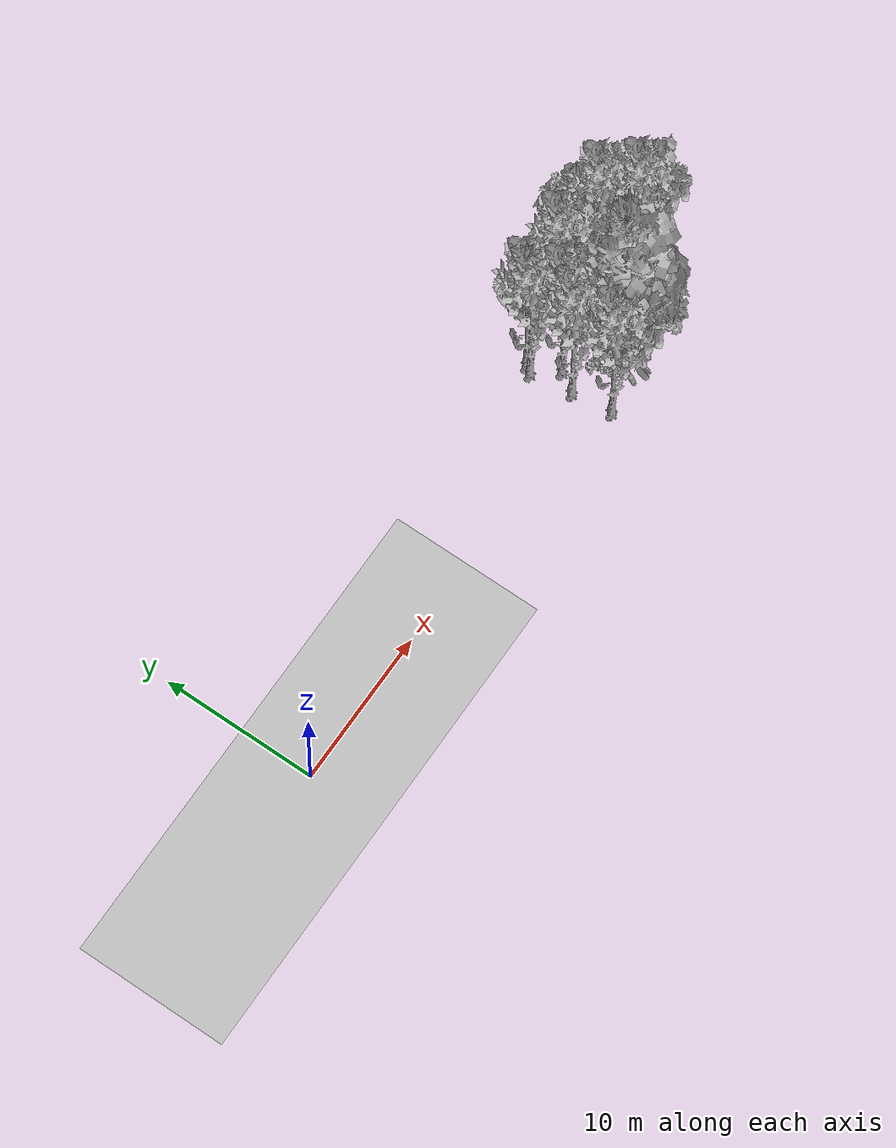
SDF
<sdf version="1.7">
 <world name="default">
  <model name="ground_plane">
   <static>1</static>
   <link name="link">
    <collision name="collision">
     <geometry><plane><normal>0 0 1</normal><size>100 100</size></plane></geometry>
     <surface><contact><ode><min_depth>0.01</min_depth><max_vel>0</max_vel></ode></contact></surface>
    </collision>
    <visual name="grass">
     <cast_shadows>0</cast_shadows>
     <geometry>
      <mesh>
       <scale>0.5814285714285714 0.18142857142857144 0.1</scale>
       <uri>file://grass_plane/meshes/grass_plane.dae</uri>
      </mesh>
     </geometry>
    </visual>
   </link>
  </model>
  <model name="Tree 74">
   <static>1</static>
   <pose>35.125090444855275 3.9969409657972506 0 1.57079 -0 0</pose>
   <link name="link">
    <collision name="collision">
     <geometry><mesh><scale>3.5 5 3.5</scale><uri>model://tree_9/meshes/tree_9.obj</uri></mesh></geometry>
    </collision>
    <visual name="visual">
     <geometry><mesh><scale>3.5 5 3.5</scale><uri>model://tree_9/meshes/tree_9.obj</uri></mesh></geometry>
    </visual>
   </link>
  </model>
  <model name="Tree 87">
   <static>1</static>
   <pose>27.876167761664064 4.166294440727153 0 1.57079 -0 0</pose>
   <link name="link">
    <collision name="collision">
     <geometry><mesh><scale>3.5 5 3.5</scale><uri>model://tree_9/meshes/tree_9.obj</uri></mesh></geometry>
    </collision>
    <visual name="visual">
     <geometry><mesh><scale>3.5 5 3.5</scale><uri>model://tree_9/meshes/tree_9.obj</uri></mesh></geometry>
    </visual>
   </link>
  </model>
  <model name="Tree 112">
   <static>1</static>
   <pose>27.541952539745935 3.7006533865984466 0 1.57079 -0 0</pose>
   <link name="link">
    <collision name="collision">
     <geometry><mesh><scale>3.5 5 3.5</scale><uri>model://tree_9/meshes/tree_9.obj</uri></mesh></geometry>
    </collision>
    <visual name="visual">
     <geometry><mesh><scale>3.5 5 3.5</scale><uri>model://tree_9/meshes/tree_9.obj</uri></mesh></geometry>
    </visual>
   </link>
  </model>
  <model name="Tree 163">
   <static>1</static>
   <pose>31.589402543555067 -0.5273716036500424 0 1.57079 -0 0</pose>
   <link name="link">
    <collision name="collision">
     <geometry><mesh><scale>3.5 5 3.5</scale><uri>model://tree_4/meshes/tree_4.obj</uri></mesh></geometry>
    </collision>
    <visual name="visual">
     <geometry><mesh><scale>3.5 5 3.5</scale><uri>model://tree_4/meshes/tree_4.obj</uri></mesh></geometry>
    </visual>
   </link>
  </model>
  <model name="Tree 196">
   <static>1</static>
   <pose>28.251032733998045 -1.5828238076904793 0 1.57079 -0 0</pose>
   <link name="link">
    <collision name="collision">
     <geometry><mesh><scale>3.5 5 3.5</scale><uri>model://tree_9/meshes/tree_9.obj</uri></mesh></geometry>
    </collision>
    <visual name="visual">
     <geometry><mesh><scale>3.5 5 3.5</scale><uri>model://tree_9/meshes/tree_9.obj</uri></mesh></geometry>
    </visual>
   </link>
  </model>
  <model name="Tree 197">
   <static>1</static>
   <pose>27.926452989576276 1.0045835869653352 0 1.57079 -0 0</pose>
   <link name="link">
    <collision name="collision">
     <geometry><mesh><scale>3.5 5 3.5</scale><uri>model://tree_9/meshes/tree_9.obj</uri></mesh></geometry>
    </collision>
    <visual name="visual">
     <geometry><mesh><scale>3.5 5 3.5</scale><uri>model://tree_9/meshes/tree_9.obj</uri></mesh></geometry>
    </visual>
   </link>
  </model>
  <model name="Tree 211">
   <static>1</static>
   <pose>32.12789641169731 0.2687260175985333 0 1.57079 -0 0</pose>
   <link name="link">
    <collision name="collision">
     <geometry><mesh><scale>3.5 5 3.5</scale><uri>model://tree_2/meshes/tree_2.obj</uri></mesh></geometry>
    </collision>
    <visual name="visual">
     <geometry><mesh><scale>3.5 5 3.5</scale><uri>model://tree_2/meshes/tree_2.obj</uri></mesh></geometry>
    </visual>
   </link>
  </model>
  <model name="Tree 233">
   <static>1</static>
   <pose>34.743775126261 4.579839337587085 0 1.57079 -0 0</pose>
   <link name="link">
    <collision name="collision">
     <geometry><mesh><scale>3.5 5 3.5</scale><uri>model://tree_2/meshes/tree_2.obj</uri></mesh></geometry>
    </collision>
    <visual name="visual">
     <geometry><mesh><scale>3.5 5 3.5</scale><uri>model://tree_2/meshes/tree_2.obj</uri></mesh></geometry>
    </visual>
   </link>
  </model>
  <model name="Tree 278">
   <static>1</static>
   <pose>36.594304509823345 2.2123506245192175 0 1.57079 -0 0</pose>
   <link name="link">
    <collision name="collision">
     <geometry><mesh><scale>3.5 5 3.5</scale><uri>model://tree_9/meshes/tree_9.obj</uri></mesh></geometry>
    </collision>
    <visual name="visual">
     <geometry><mesh><scale>3.5 5 3.5</scale><uri>model://tree_9/meshes/tree_9.obj</uri></mesh></geometry>
    </visual>
   </link>
  </model>
  <model name="Tree 343">
   <static>1</static>
   <pose>31.262811779418897 4.1723775978129645 0 1.57079 -0 0</pose>
   <link name="link">
    <collision name="collision">
     <geometry><mesh><scale>3.5 5 3.5</scale><uri>model://tree_9/meshes/tree_9.obj</uri></mesh></geometry>
    </collision>
    <visual name="visual">
     <geometry><mesh><scale>3.5 5 3.5</scale><uri>model://tree_9/meshes/tree_9.obj</uri></mesh></geometry>
    </visual>
   </link>
  </model>
  <model name="Tree 449">
   <static>1</static>
   <pose>28.707354855055186 2.2204369117669636 0 1.57079 -0 0</pose>
   <link name="link">
    <collision name="collision">
     <geometry><mesh><scale>3.5 5 3.5</scale><uri>model://tree_9/meshes/tree_9.obj</uri></mesh></geometry>
    </collision>
    <visual name="visual">
     <geometry><mesh><scale>3.5 5 3.5</scale><uri>model://tree_9/meshes/tree_9.obj</uri></mesh></geometry>
    </visual>
   </link>
  </model>
  <model name="Bush 50">
   <static>1</static>
   <pose>31.191404221664172 0.37957116594011175 0 1.57079 -0 0</pose>
   <link name="link">
    <collision name="collision">
     <geometry><mesh><scale>2 2 2</scale><uri>model://bush_3/meshes/bush_3.obj</uri></mesh></geometry>
     <surface><contact><collide_without_contact>false</collide_without_contact></contact></surface>
    </collision>
    <visual name="visual">
     <geometry><mesh><scale>2 2 2</scale><uri>model://bush_3/meshes/bush_3.obj</uri></mesh></geometry>
    </visual>
   </link>
  </model>
  <model name="Bush 75">
   <static>1</static>
   <pose>34.57828612989742 -1.4513280426075852 0 1.57079 -0 0</pose>
   <link name="link">
    <collision name="collision">
     <geometry><mesh><scale>2 2 2</scale><uri>model://bush_1/meshes/bush_1.obj</uri></mesh></geometry>
     <surface><contact><collide_without_contact>false</collide_without_contact></contact></surface>
    </collision>
    <visual name="visual">
     <geometry><mesh><scale>2 2 2</scale><uri>model://bush_1/meshes/bush_1.obj</uri></mesh></geometry>
    </visual>
   </link>
  </model>
  <model name="Bush 139">
   <static>1</static>
   <pose>36.228836543106894 -0.5076567464964938 0 1.57079 -0 0</pose>
   <link name="link">
    <collision name="collision">
     <geometry><mesh><scale>2 2 2</scale><uri>model://bush_2/meshes/bush_2.obj</uri></mesh></geometry>
     <surface><contact><collide_without_contact>false</collide_without_contact></contact></surface>
    </collision>
    <visual name="visual">
     <geometry><mesh><scale>2 2 2</scale><uri>model://bush_2/meshes/bush_2.obj</uri></mesh></geometry>
    </visual>
   </link>
  </model>
  <model name="Bush 152">
   <static>1</static>
   <pose>30.403546474006617 2.8574175522205643 0 1.57079 -0 0</pose>
   <link name="link">
    <collision name="collision">
     <geometry><mesh><scale>2 2 2</scale><uri>model://bush_4/meshes/bush_4.obj</uri></mesh></geometry>
     <surface><contact><collide_without_contact>false</collide_without_contact></contact></surface>
    </collision>
    <visual name="visual">
     <geometry><mesh><scale>2 2 2</scale><uri>model://bush_4/meshes/bush_4.obj</uri></mesh></geometry>
    </visual>
   </link>
  </model>
  <model name="Bush 184">
   <static>1</static>
   <pose>33.25666969411576 2.5883820422435804 0 1.57079 -0 0</pose>
   <link name="link">
    <collision name="collision">
     <geometry><mesh><scale>2 2 2</scale><uri>model://bush_3/meshes/bush_3.obj</uri></mesh></geometry>
     <surface><contact><collide_without_contact>false</collide_without_contact></contact></surface>
    </collision>
    <visual name="visual">
     <geometry><mesh><scale>2 2 2</scale><uri>model://bush_3/meshes/bush_3.obj</uri></mesh></geometry>
    </visual>
   </link>
  </model>
  <model name="Bush 227">
   <static>1</static>
   <pose>33.178854740683974 3.290572326624755 0 1.57079 -0 0</pose>
   <link name="link">
    <collision name="collision">
     <geometry><mesh><scale>2 2 2</scale><uri>model://bush_1/meshes/bush_1.obj</uri></mesh></geometry>
     <surface><contact><collide_without_contact>false</collide_without_contact></contact></surface>
    </collision>
    <visual name="visual">
     <geometry><mesh><scale>2 2 2</scale><uri>model://bush_1/meshes/bush_1.obj</uri></mesh></geometry>
    </visual>
   </link>
  </model>
  <model name="Bush 239">
   <static>1</static>
   <pose>36.26650497022307 2.53860824112731 0 1.57079 -0 0</pose>
   <link name="link">
    <collision name="collision">
     <geometry><mesh><scale>2 2 2</scale><uri>model://bush_5/meshes/bush_5.obj</uri></mesh></geometry>
     <surface><contact><collide_without_contact>false</collide_without_contact></contact></surface>
    </collision>
    <visual name="visual">
     <geometry><mesh><scale>2 2 2</scale><uri>model://bush_5/meshes/bush_5.obj</uri></mesh></geometry>
    </visual>
   </link>
  </model>
  <model name="Bush 249">
   <static>1</static>
   <pose>30.054806525683247 0.8544049637384319 0 1.57079 -0 0</pose>
   <link name="link">
    <collision name="collision">
     <geometry><mesh><scale>2 2 2</scale><uri>model://bush_2/meshes/bush_2.obj</uri></mesh></geometry>
     <surface><contact><collide_without_contact>false</collide_without_contact></contact></surface>
    </collision>
    <visual name="visual">
     <geometry><mesh><scale>2 2 2</scale><uri>model://bush_2/meshes/bush_2.obj</uri></mesh></geometry>
    </visual>
   </link>
  </model>
  <model name="Bush 271">
   <static>1</static>
   <pose>31.4412135115318 2.828494334962013 0 1.57079 -0 0</pose>
   <link name="link">
    <collision name="collision">
     <geometry><mesh><scale>2 2 2</scale><uri>model://bush_3/meshes/bush_3.obj</uri></mesh></geometry>
     <surface><contact><collide_without_contact>false</collide_without_contact></contact></surface>
    </collision>
    <visual name="visual">
     <geometry><mesh><scale>2 2 2</scale><uri>model://bush_3/meshes/bush_3.obj</uri></mesh></geometry>
    </visual>
   </link>
  </model>
  <model name="Bush 328">
   <static>1</static>
   <pose>30.491502426839503 -0.1301484025726758 0 1.57079 -0 0</pose>
   <link name="link">
    <collision name="collision">
     <geometry><mesh><scale>2 2 2</scale><uri>model://bush_3/meshes/bush_3.obj</uri></mesh></geometry>
     <surface><contact><collide_without_contact>false</collide_without_contact></contact></surface>
    </collision>
    <visual name="visual">
     <geometry><mesh><scale>2 2 2</scale><uri>model://bush_3/meshes/bush_3.obj</uri></mesh></geometry>
    </visual>
   </link>
  </model>
  <model name="Bush 330">
   <static>1</static>
   <pose>32.955997249523705 0.8745724147591929 0 1.57079 -0 0</pose>
   <link name="link">
    <collision name="collision">
     <geometry><mesh><scale>2 2 2</scale><uri>model://bush_2/meshes/bush_2.obj</uri></mesh></geometry>
     <surface><contact><collide_without_contact>false</collide_without_contact></contact></surface>
    </collision>
    <visual name="visual">
     <geometry><mesh><scale>2 2 2</scale><uri>model://bush_2/meshes/bush_2.obj</uri></mesh></geometry>
    </visual>
   </link>
  </model>
 </world>
</sdf>
